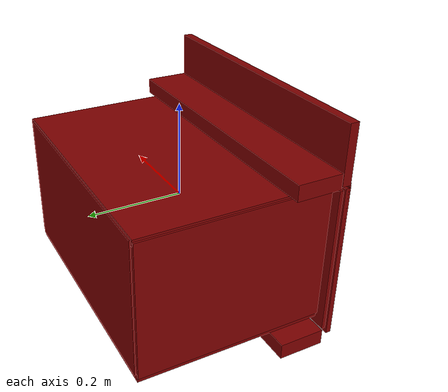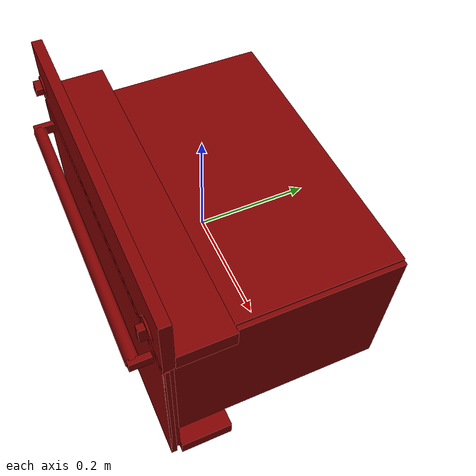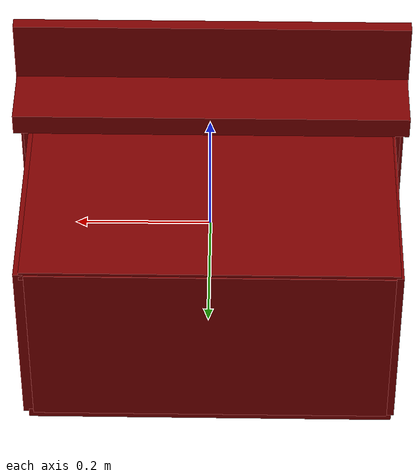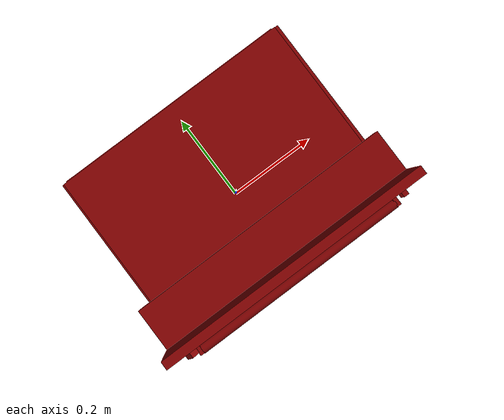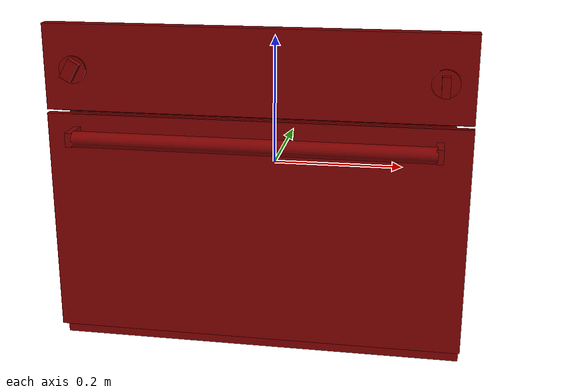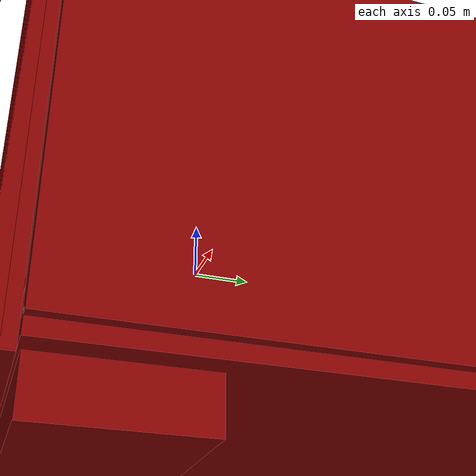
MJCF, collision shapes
<?xml version='1.0' encoding='UTF-8'?>
<mujoco model="model">
  <option timestep="0.002" gravity="0.0 0.0 -9.81"/>
  <compiler angle="radian"/>
  <asset>
    <mesh file="visuals/door.obj" name="door_vis"/>
    <mesh file="visuals/door_Clear.obj" name="door_Clear_vis"/>
    <mesh file="visuals/knob_temp.obj" name="knob_temp_vis"/>
    <mesh file="visuals/knob_time.obj" name="knob_time_vis"/>
    <mesh file="visuals/Body001.obj" name="Body001_vis"/>
    <mesh file="visuals/rack0.obj" name="rack0_vis"/>
    <mesh file="visuals/rack1.obj" name="rack1_vis"/>
    <texture file="visuals/T_BC001.png" name="Body001_material" type="2d"/>
    <material name="Body001_material" rgba="1 1 1 1.0" texture="Body001_material" shininess="0.5" specular="0.5"/>
    <texture file="visuals/T_BC001.png" name="door_material" type="2d"/>
    <material name="door_material" rgba="1 1 1 1.0" texture="door_material" shininess="0.5" specular="0.5"/>
    <texture file="visuals/T_BC001.png" name="door_Clear_material" type="2d"/>
    <material name="door_Clear_material" rgba="1 1 1 0.9045518040657043" texture="door_Clear_material" shininess="0.5" specular="0.3103448502657381"/>
    <texture file="visuals/T_BC001.png" name="knob_temp_material" type="2d"/>
    <material name="knob_temp_material" rgba="1 1 1 1.0" texture="knob_temp_material" shininess="0.5" specular="0.3103448502657381"/>
    <texture file="visuals/T_BC001.png" name="knob_time_material" type="2d"/>
    <material name="knob_time_material" rgba="1 1 1 1.0" texture="knob_time_material" shininess="0.5" specular="0.3103448502657381"/>
    <texture file="visuals/T_BC001.png" name="rack0_material" type="2d"/>
    <material name="rack0_material" rgba="1 1 1 1.0" texture="rack0_material" shininess="0.5" specular="5"/>
    <texture file="visuals/T_BC001.png" name="rack1_material" type="2d"/>
    <material name="rack1_material" rgba="1 1 1 1.0" texture="rack1_material" shininess="0.5" specular="5"/>
  </asset>
  <default>
    <default class="visual">
      <geom conaffinity="0" contype="0" group="1" type="mesh"/>
    </default>
    <default class="collision">
      <geom group="0" rgba="0.5 0 0 0.5"/>
    </default>
    <default class="spawn">
      <geom group="0" rgba="1 1 1 0.5" contype="0" conaffinity="0"/>
      <site group="0" rgba="1 1 1 0.5"/>
    </default>
    <default class="region">
      <geom group="1" conaffinity="0" contype="0" rgba="0 1 0 0"/>
    </default>
  </default>
  <worldbody>
    <body>
      <body name="object">
        <geom mesh="Body001_vis" type="mesh" solimp="0.998 0.998 0.001" solref="0.001 1" friction="0.95 0.3 0.1" class="visual" material="Body001_material"/>
        <geom class="collision" type="box" pos="0.0001385873183608055 -0.11962300539016724 0.12895439565181732" size="0.29593801498413086 0.04697509482502937 0.01630604825913906" quat="1.0 0.0 0.0 0.0"/>
        <geom class="collision" type="box" pos="0.00013840850442647934 -0.1185215562582016 -0.2231420874595642" size="0.29593801498413086 0.048465847969055176 0.016418814659118652" quat="1.0 0.0 0.0 0.0"/>
        <geom class="collision" type="box" pos="0.0005897199735045433 -0.09609633684158325 -0.19395418465137482" size="0.19131983816623688 0.023435600101947784 0.016083434224128723" quat="1.0 0.0 0.0 0.0"/>
        <geom class="collision" type="box" pos="-0.0024960804730653763 0.21943849325180054 -0.03495519608259201" size="0.26218441128730774 0.006360001862049103 0.14234308898448944" quat="1.0 0.0 0.0 0.0"/>
        <geom class="collision" type="box" pos="0.26540112495422363 0.028545022010803223 -0.03495519235730171" size="0.009087370708584785 0.1946200728416443 0.14234308898448944" quat="1.0 0.0 0.0 0.0"/>
        <geom class="collision" type="box" pos="-0.2659369707107544 0.028545022010803223 -0.03495519235730171" size="0.009435161016881466 0.1946200728416443 0.14234308898448944" quat="1.0 0.0 0.0 0.0"/>
        <geom class="collision" type="box" pos="-0.00233306922018528 0.028545022010803223 0.10476645082235336" size="0.26893773674964905 0.19462010264396667 0.0070916470140218735" quat="1.0 0.0 0.0 0.0"/>
        <geom class="collision" type="box" pos="-0.00233306922018528 0.028545022010803223 -0.1800948530435562" size="0.26893773674964905 0.19462010264396667 0.008144679479300976" quat="1.0 0.0 0.0 0.0"/>
        <geom class="collision" type="box" pos="-9.37068834900856e-05 -0.17641803622245789 0.1788349151611328" size="0.2969999313354492 0.009311199188232422 0.06072571501135826" quat="1.0 0.0 0.0 0.0"/>
        <geom class="collision" type="box" pos="0.24714826047420502 0.019618427380919456 -0.12310250848531723" size="0.013070976361632347 0.14835990965366364 0.004147306550294161" quat="1.0 0.0 0.0 0.0"/>
        <geom class="collision" type="box" pos="-0.24648930132389069 0.019618427380919456 0.004796831868588924" size="0.013070963323116302 0.14835990965366364 0.004147309344261885" quat="1.0 0.0 0.0 0.0"/>
        <geom class="collision" type="box" pos="-0.24648930132389069 0.019618427380919456 -0.12310250848531723" size="0.013070963323116302 0.14835990965366364 0.004147302825003862" quat="1.0 0.0 0.0 0.0"/>
        <geom class="collision" type="box" pos="0.2471482753753662 0.019618427380919456 0.0047968365252017975" size="0.013070963323116302 0.14835990965366364 0.0041473074816167355" quat="1.0 0.0 0.0 0.0"/>
        <body name="door">
          <joint axis="1.0 0.0 0.0" pos="-6.51925802230835e-09 -0.18708494817838073 -0.2166176214814186" limited="true" name="door_joint" range="0.0 1.15" type="hinge" damping="1" frictionloss="1" armature="1" stiffness="2"/>
          <geom mesh="door_vis" type="mesh" solimp="0.998 0.998 0.001" solref="0.001 1" friction="0.95 0.3 0.1" class="visual" material="door_material"/>
          <geom class="collision" type="box" pos="-6.51925802230835e-09 -0.18176592886447906 -0.051945559680461884" size="0.29709380865097046 0.00531902676448226 0.16467206180095673" quat="1.0 0.0 0.0 0.0"/>
          <geom class="collision" type="cylinder" pos="0.0005732558201998472 -0.2154431790113449 0.08429500460624695" size="0.011177510023117065 0.24997226893901825" quat="0.7071068286895752 1.2101618374060763e-08 0.7071067690849304 -1.2101617485882343e-08" name="door_handle_main"/>
          <geom class="collision" type="box" pos="0.25304916501045227 -0.20494045317173004 0.08437934517860413" size="0.004834496416151524 0.019185734912753105 0.009914780035614967" quat="1.0 0.0 0.0 0.0"/>
          <geom class="collision" type="box" pos="-0.2537396550178528 -0.20494045317173004 0.08437934517860413" size="0.004834496416151524 0.019185734912753105 0.009914780035614967" quat="1.0 0.0 0.0 0.0"/>
          <geom class="collision" type="box" pos="0.0005355076864361763 -0.1774793565273285 -0.05019999295473099" size="0.29228195548057556 0.008883001282811165 0.15669754147529602" quat="1.0 0.0 0.0 0.0"/>
          <geom class="collision" type="box" pos="-6.51925802230835e-09 -0.18519148230552673 -0.051945559680461884" size="0.29709380865097046 0.0018934658728539944 0.16467206180095673" quat="1.0 0.0 0.0 0.0" name="door_main"/>
          <body name="door_Clear">
            <geom mesh="door_Clear_vis" type="mesh" solimp="0.998 0.998 0.001" solref="0.001 1" friction="0.95 0.3 0.1" class="visual" material="door_Clear_material"/>
            <geom class="collision" type="box" pos="0.0005355076864361763 -0.1774793565273285 -0.05019999295473099" size="0.29228195548057556 0.008883001282811165 0.15669754147529602" quat="1.0 0.0 0.0 0.0"/>
          </body>
        </body>
        <body name="knob_temp">
          <joint axis="0.0 1.0 0.0" pos="-0.25442516803741455 -0.1934025138616562 0.17655177414417267" limited="true" name="knob_temp_joint" range="0.0 4.974188368183839" type="hinge" damping="0.05" frictionloss="0.75" armature="1"/>
          <geom mesh="knob_temp_vis" type="mesh" solimp="0.998 0.998 0.001" solref="0.001 1" friction="0.95 0.3 0.1" class="visual" material="knob_temp_material"/>
          <geom class="collision" type="cylinder" pos="-0.25438302755355835 -0.1891133040189743 0.1765359789133072" size="0.019280582666397095 0.0017996126553043723" quat="0.7071067094802856 0.7071068286895752 0.0 0.0" friction="100 0.5 0.01"/>
          <geom class="collision" type="box" pos="-0.25470221042633057 -0.19750595092773438 0.177241712808609" size="0.008250432088971138 0.006144003476947546 0.014450949616730213" quat="0.9671083092689514 -1.6025834825850183e-10 0.2543649971485138 -5.980698714047605e-10" name="knob_temp_main" friction="100 0.5 0.01"/>
        </body>
        <body name="knob_time">
          <joint axis="0.0 -1.0 0.0" pos="0.2560276389122009 -0.1934024542570114 0.17407190799713135" limited="true" name="knob_time_joint" range="-1.0471975511965976 3.141592653589793" type="hinge" damping="0.05" frictionloss="0.75" armature="1"/>
          <geom mesh="knob_time_vis" type="mesh" solimp="0.998 0.998 0.001" solref="0.001 1" friction="0.95 0.3 0.1" class="visual" material="knob_time_material"/>
          <geom class="collision" type="cylinder" pos="0.2558738589286804 -0.18985889852046967 0.1742713451385498" size="0.019232727587223053 0.0017872124444693327" quat="0.7071067094802856 0.7071068286895752 0.0 0.0" friction="100 0.5 0.01"/>
          <geom class="collision" type="box" pos="0.2560108006000519 -0.19749823212623596 0.17172282934188843" size="0.005599156953394413 0.00600207457318902 0.01411654893308878" quat="0.9999803304672241 -1.0021440557752312e-15 -0.006273732054978609 -8.429356657124742e-10" name="knob_time_main" friction="100 0.5 0.01"/>
        </body>
        <body name="rack0">
          <geom class="region" name="reg_rack0" type="box" pos="0.0015157461166381836 0.0283140167593956 -0.05676739243790507" size="0.2214505205154419 0.16868769174814224 0.05263001688197255"/>
          <joint axis="0.0 -1.0 0.0" pos="-0.0002310562413185835 0.02812885493040085 -0.11620964854955673" limited="true" name="rack0_joint" range="0.0 0.195" type="slide" damping="1" frictionloss="1" armature=".01" stiffness="0.05"/>
          <geom mesh="rack0_vis" type="mesh" solimp="0.998 0.998 0.001" solref="0.001 1" friction="0.95 0.3 0.1" class="visual" material="rack0_material"/>
          <geom class="collision" type="box" pos="-0.0002310519339516759 0.028128929436206818 -0.11620976775884628" size="0.2553415596485138 0.17482444643974304 0.002156995004042983" quat="1.0 0.0 0.0 0.0"/>
        </body>
        <body name="rack1">
          <geom class="region" name="reg_rack1" type="box" pos="0.0015157461166381836 0.0283140167593956 0.055320282466709614" size="0.2214505205154419 0.16868769174814224 0.03728848772495985"/>
          <joint axis="0.0 -1.0 0.0" pos="-0.0002310562413185835 0.02812885493040085 0.011527182534337044" limited="true" name="rack1_joint" range="0.0 0.195" type="slide" damping="1" frictionloss="1" armature=".01" stiffness="0.05"/>
          <geom mesh="rack1_vis" type="mesh" solimp="0.998 0.998 0.001" solref="0.001 1" friction="0.95 0.3 0.1" class="visual" material="rack1_material"/>
          <geom class="collision" type="box" pos="-0.0002310519339516759 0.028128858655691147 0.011527344584465027" size="0.2553415596485138 0.174824520945549 0.002156729344278574" quat="1.0 0.0 0.0 0.0"/>
        </body>
        <geom class="region" name="reg_int" type="box" pos="0.00033959001302719116 0.020201310515403748 -0.036591723561286926" size="0.24985401874780655 0.1819871643781662 0.12984315848350525"/>
        <geom class="region" name="reg_main" type="box" pos="0.0 0.01934576779603958 -1.1175870895385742e-08" size="0.29809380865097046 0.20745278692245483 0.24056091701984406"/>
      </body>
    </body>
  </worldbody>
  <actuator>
    <motor name="door_joint_actuator" joint="door_joint" gear="50"/>
    <motor name="knob_temp_joint_actuator" joint="knob_temp_joint" gear="50"/>
    <motor name="knob_time_joint_actuator" joint="knob_time_joint" gear="50"/>
    <motor name="rack0_joint_actuator" joint="rack0_joint" gear="50"/>
    <motor name="rack1_joint_actuator" joint="rack1_joint" gear="50"/>
  </actuator>
</mujoco>
